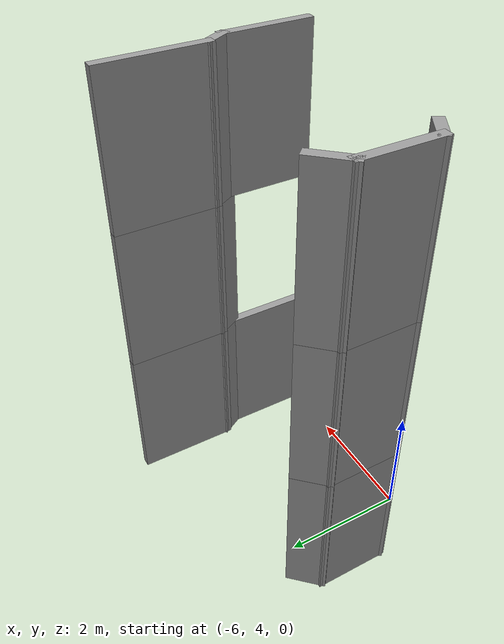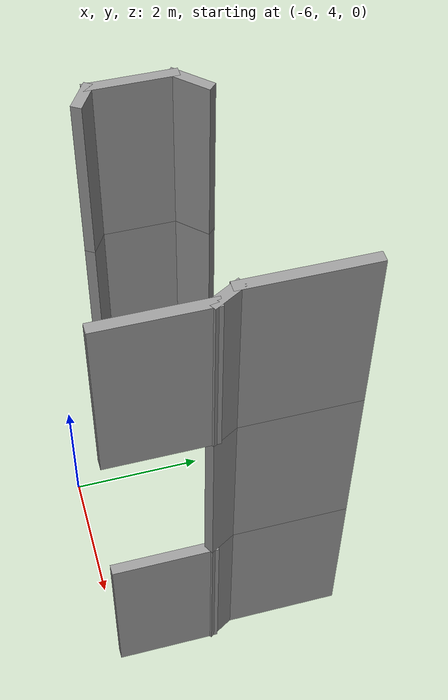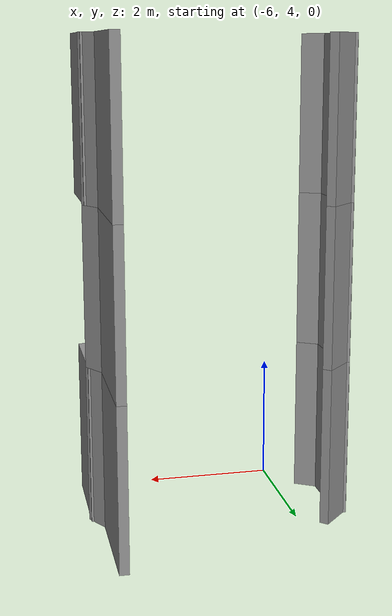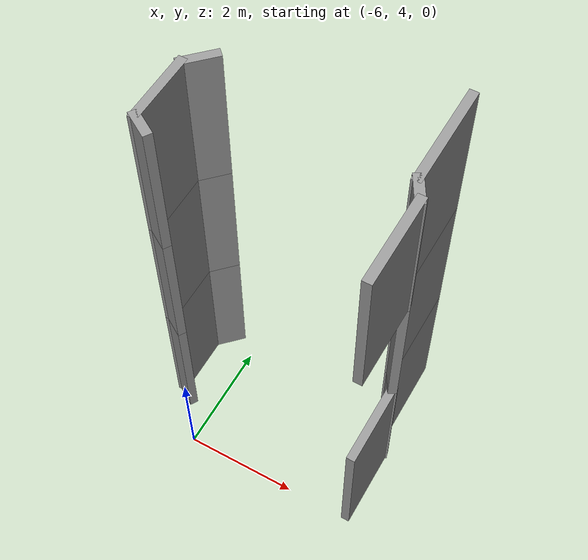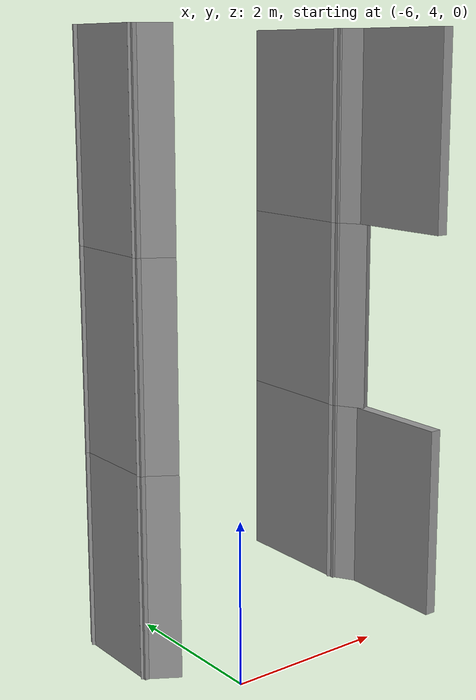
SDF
<sdf version="1.6">
 <model name="use_case1_stacked">
  <pose>0.822713 6.83476 0 0 -0 0</pose>
  <link name="Wall_289">
   <collision name="Wall_289_Collision">
    <geometry><box><size>0.482733 0.15 2.5</size></box></geometry>
    <pose>0 0 1.25 0 -0 0</pose>
   </collision>
   <visual name="Wall_289_Visual">
    <pose>0 0 1.25 0 -0 0</pose>
    <geometry><box><size>0.482733 0.15 2.5</size></box></geometry>
    <material>
     <script><uri>file://media/materials/scripts/gazebo.material</uri><name>Gazebo/Grey</name></script>
     <ambient>1 1 1 1</ambient>
    </material>
   </visual>
   <pose>-7.42703 -2.08008 2.5 0 -0 2.58777</pose>
  </link>
  <link name="Wall_290">
   <collision name="Wall_290_Collision">
    <geometry><box><size>1.25 0.15 2.5</size></box></geometry>
    <pose>0 0 1.25 0 -0 0</pose>
   </collision>
   <visual name="Wall_290_Visual">
    <pose>0 0 1.25 0 -0 0</pose>
    <geometry><box><size>1.25 0.15 2.5</size></box></geometry>
    <material>
     <script><uri>file://media/materials/scripts/gazebo.material</uri><name>Gazebo/Grey</name></script>
     <ambient>1 1 1 1</ambient>
    </material>
   </visual>
   <pose>-7.56852 -1.44258 2.5 0 -0 1.5708</pose>
  </link>
  <link name="Wall_291">
   <collision name="Wall_291_Collision">
    <geometry><box><size>0.645012 0.15 2.5</size></box></geometry>
    <pose>0 0 1.25 0 -0 0</pose>
   </collision>
   <visual name="Wall_291_Visual">
    <pose>0 0 1.25 0 -0 0</pose>
    <geometry><box><size>0.645012 0.15 2.5</size></box></geometry>
    <material>
     <script><uri>file://media/materials/scripts/gazebo.material</uri><name>Gazebo/Grey</name></script>
     <ambient>1 1 1 1</ambient>
    </material>
   </visual>
   <pose>-7.39572 -0.715387 2.5 0 -0 0.797941</pose>
  </link>
  <link name="Wall_297">
   <collision name="Wall_297_Collision">
    <geometry><box><size>1.75 0.15 2.5</size></box></geometry>
    <pose>0 0 1.25 0 -0 0</pose>
   </collision>
   <visual name="Wall_297_Visual">
    <pose>0 0 1.25 0 -0 0</pose>
    <geometry><box><size>1.75 0.15 2.5</size></box></geometry>
    <material>
     <script><uri>file://media/materials/scripts/gazebo.material</uri><name>Gazebo/Grey</name></script>
     <ambient>1 1 1 1</ambient>
    </material>
   </visual>
   <pose>-3.88383 -0.309629 2.5 0 0 -1.5708</pose>
  </link>
  <link name="Wall_298">
   <collision name="Wall_298_Collision">
    <geometry><box><size>0.5 0.15 2.5</size></box></geometry>
    <pose>0 0 1.25 0 -0 0</pose>
   </collision>
   <visual name="Wall_298_Visual">
    <pose>0 0 1.25 0 -0 0</pose>
    <geometry><box><size>0.5 0.15 2.5</size></box></geometry>
    <material>
     <script><uri>file://media/materials/scripts/gazebo.material</uri><name>Gazebo/Grey</name></script>
     <ambient>1 1 1 1</ambient>
    </material>
   </visual>
   <pose>-3.79633 -1.26118 2.5 0 0 -1.0472</pose>
  </link>
  <link name="Wall_356">
   <collision name="Wall_356_Collision">
    <geometry><box><size>0.482733 0.15 2.5</size></box></geometry>
    <pose>0 0 1.25 0 -0 0</pose>
   </collision>
   <visual name="Wall_356_Visual">
    <pose>0 0 1.25 0 -0 0</pose>
    <geometry><box><size>0.482733 0.15 2.5</size></box></geometry>
    <material>
     <script><uri>file://media/materials/scripts/gazebo.material</uri><name>Gazebo/Grey</name></script>
     <ambient>1 1 1 1</ambient>
    </material>
   </visual>
   <pose>-7.42703 -2.08008 5 0 -0 2.58777</pose>
  </link>
  <link name="Wall_357">
   <collision name="Wall_357_Collision">
    <geometry><box><size>1.25 0.15 2.5</size></box></geometry>
    <pose>0 0 1.25 0 -0 0</pose>
   </collision>
   <visual name="Wall_357_Visual">
    <pose>0 0 1.25 0 -0 0</pose>
    <geometry><box><size>1.25 0.15 2.5</size></box></geometry>
    <material>
     <script><uri>file://media/materials/scripts/gazebo.material</uri><name>Gazebo/Grey</name></script>
     <ambient>1 1 1 1</ambient>
    </material>
   </visual>
   <pose>-7.56852 -1.44258 5 0 -0 1.5708</pose>
  </link>
  <link name="Wall_358">
   <collision name="Wall_358_Collision">
    <geometry><box><size>0.645012 0.15 2.5</size></box></geometry>
    <pose>0 0 1.25 0 -0 0</pose>
   </collision>
   <visual name="Wall_358_Visual">
    <pose>0 0 1.25 0 -0 0</pose>
    <geometry><box><size>0.645012 0.15 2.5</size></box></geometry>
    <material>
     <script><uri>file://media/materials/scripts/gazebo.material</uri><name>Gazebo/Grey</name></script>
     <ambient>1 1 1 1</ambient>
    </material>
   </visual>
   <pose>-7.39572 -0.715387 5 0 -0 0.797941</pose>
  </link>
  <link name="Wall_364">
   <collision name="Wall_364_Collision">
    <geometry><box><size>1.75 0.15 2.5</size></box></geometry>
    <pose>0 0 1.25 0 -0 0</pose>
   </collision>
   <visual name="Wall_364_Visual">
    <pose>0 0 1.25 0 -0 0</pose>
    <geometry><box><size>1.75 0.15 2.5</size></box></geometry>
    <material>
     <script><uri>file://media/materials/scripts/gazebo.material</uri><name>Gazebo/Grey</name></script>
     <ambient>1 1 1 1</ambient>
    </material>
   </visual>
   <pose>-3.88383 -0.309629 5 0 0 -1.5708</pose>
  </link>
  <link name="Wall_365">
   <collision name="Wall_365_Collision">
    <geometry><box><size>0.5 0.15 2.5</size></box></geometry>
    <pose>0 0 1.25 0 -0 0</pose>
   </collision>
   <visual name="Wall_365_Visual">
    <pose>0 0 1.25 0 -0 0</pose>
    <geometry><box><size>0.5 0.15 2.5</size></box></geometry>
    <material>
     <script><uri>file://media/materials/scripts/gazebo.material</uri><name>Gazebo/Grey</name></script>
     <ambient>1 1 1 1</ambient>
    </material>
   </visual>
   <pose>-3.79633 -1.26118 5 0 0 -1.0472</pose>
  </link>
  <link name="Wall_366">
   <collision name="Wall_366_Collision">
    <geometry><box><size>1.5 0.15 2.5</size></box></geometry>
    <pose>0 0 1.25 0 -0 0</pose>
   </collision>
   <visual name="Wall_366_Visual">
    <pose>0 0 1.25 0 -0 0</pose>
    <geometry><box><size>1.5 0.15 2.5</size></box></geometry>
    <material>
     <script><uri>file://media/materials/scripts/gazebo.material</uri><name>Gazebo/Grey</name></script>
     <ambient>1 1 1 1</ambient>
    </material>
   </visual>
   <pose>-3.70883 -2.08774 5 0 0 -1.5708</pose>
  </link>
  <link name="Wall_77">
   <collision name="Wall_77_Collision">
    <geometry><box><size>0.482733 0.15 2.5</size></box></geometry>
    <pose>0 0 1.25 0 -0 0</pose>
   </collision>
   <visual name="Wall_77_Visual">
    <pose>0 0 1.25 0 -0 0</pose>
    <geometry><box><size>0.482733 0.15 2.5</size></box></geometry>
    <material>
     <script><uri>file://media/materials/scripts/gazebo.material</uri><name>Gazebo/Grey</name></script>
     <ambient>1 1 1 1</ambient>
    </material>
   </visual>
   <pose>-7.42703 -2.08008 0 0 -0 2.58777</pose>
  </link>
  <link name="Wall_78">
   <collision name="Wall_78_Collision">
    <geometry><box><size>1.25 0.15 2.5</size></box></geometry>
    <pose>0 0 1.25 0 -0 0</pose>
   </collision>
   <visual name="Wall_78_Visual">
    <pose>0 0 1.25 0 -0 0</pose>
    <geometry><box><size>1.25 0.15 2.5</size></box></geometry>
    <material>
     <script><uri>file://media/materials/scripts/gazebo.material</uri><name>Gazebo/Grey</name></script>
     <ambient>1 1 1 1</ambient>
    </material>
   </visual>
   <pose>-7.56852 -1.44258 0 0 -0 1.5708</pose>
  </link>
  <link name="Wall_80">
   <collision name="Wall_80_Collision">
    <geometry><box><size>0.645012 0.15 2.5</size></box></geometry>
    <pose>0 0 1.25 0 -0 0</pose>
   </collision>
   <visual name="Wall_80_Visual">
    <pose>0 0 1.25 0 -0 0</pose>
    <geometry><box><size>0.645012 0.15 2.5</size></box></geometry>
    <material>
     <script><uri>file://media/materials/scripts/gazebo.material</uri><name>Gazebo/Grey</name></script>
     <ambient>1 1 1 1</ambient>
    </material>
   </visual>
   <pose>-7.39572 -0.715386 0 0 -0 0.797941</pose>
  </link>
  <link name="Wall_91">
   <collision name="Wall_91_Collision">
    <geometry><box><size>1.75 0.15 2.5</size></box></geometry>
    <pose>0 0 1.25 0 -0 0</pose>
   </collision>
   <visual name="Wall_91_Visual">
    <pose>0 0 1.25 0 -0 0</pose>
    <geometry><box><size>1.75 0.15 2.5</size></box></geometry>
    <material>
     <script><uri>file://media/materials/scripts/gazebo.material</uri><name>Gazebo/Grey</name></script>
     <ambient>1 1 1 1</ambient>
    </material>
   </visual>
   <pose>-3.88383 -0.309629 0 0 0 -1.5708</pose>
  </link>
  <link name="Wall_92">
   <collision name="Wall_92_Collision">
    <geometry><box><size>0.5 0.15 2.5</size></box></geometry>
    <pose>0 0 1.25 0 -0 0</pose>
   </collision>
   <visual name="Wall_92_Visual">
    <pose>0 0 1.25 0 -0 0</pose>
    <geometry><box><size>0.5 0.15 2.5</size></box></geometry>
    <material>
     <script><uri>file://media/materials/scripts/gazebo.material</uri><name>Gazebo/Grey</name></script>
     <ambient>1 1 1 1</ambient>
    </material>
   </visual>
   <pose>-3.79633 -1.26118 0 0 0 -1.0472</pose>
  </link>
  <link name="Wall_93">
   <collision name="Wall_93_Collision">
    <geometry><box><size>1.5 0.15 2.5</size></box></geometry>
    <pose>0 0 1.25 0 -0 0</pose>
   </collision>
   <visual name="Wall_93_Visual">
    <pose>0 0 1.25 0 -0 0</pose>
    <geometry><box><size>1.5 0.15 2.5</size></box></geometry>
    <material>
     <script><uri>file://media/materials/scripts/gazebo.material</uri><name>Gazebo/Grey</name></script>
     <ambient>1 1 1 1</ambient>
    </material>
   </visual>
   <pose>-3.70883 -2.08774 0 0 0 -1.5708</pose>
  </link>
  <static>1</static>
 </model>
</sdf>
